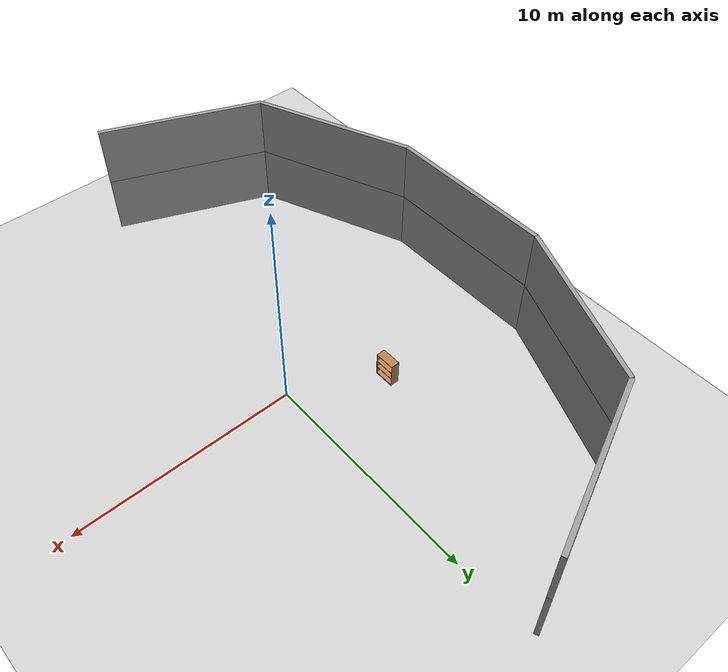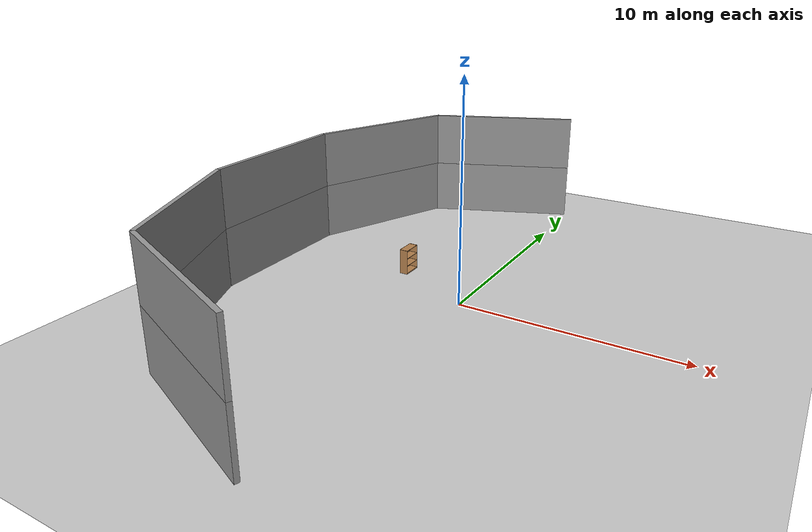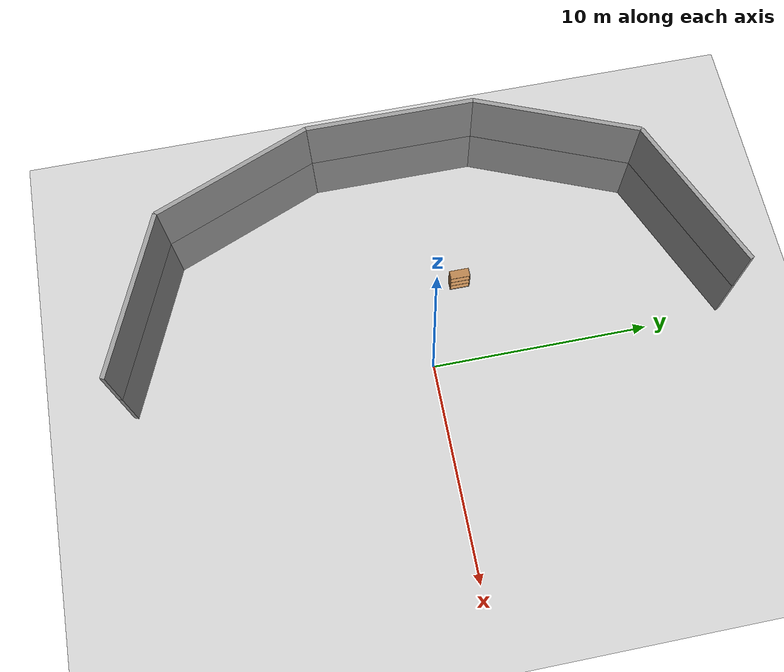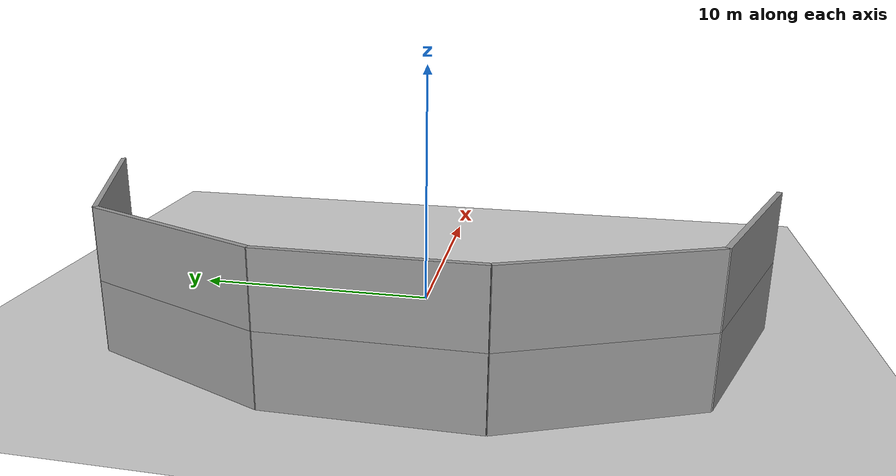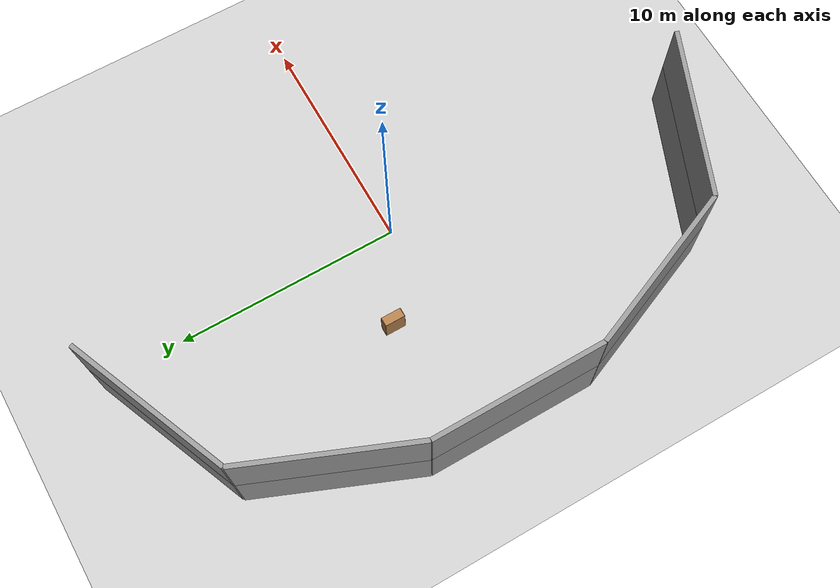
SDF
<sdf version="1.6">
 <world name="default">
  <model name="ground_plane">
   <pose>-5.34835 6.40165 0 0 -0 0.785397</pose>
   <static>1</static>
   <link name="link">
    <collision name="collision">
     <geometry><plane><normal>0 0 1</normal><size>100 100</size></plane></geometry>
     <surface>
      <contact><collide_bitmask>65535</collide_bitmask></contact>
      <friction><ode><mu>100</mu><mu2>50</mu2></ode></friction>
     </surface>
    </collision>
    <visual name="visual">
     <cast_shadows>0</cast_shadows>
     <geometry><plane><normal>0 0 1</normal><size>100 100</size></plane></geometry>
     <material>
      <script><uri>file://media/materials/scripts/gazebo.material</uri><name>Gazebo/Grey</name></script>
     </material>
    </visual>
   </link>
  </model>
  <light name="sun" type="directional">
   <pose>0 0 10 0 -0 0</pose>
   <diffuse>0.8 0.8 0.8 1</diffuse>
   <specular>0.2 0.2 0.2 1</specular>
   <attenuation>
    <range>1000</range>
    <constant>0.9</constant>
    <linear>0.01</linear>
    <quadratic>0.001</quadratic>
   </attenuation>
   <direction>-0.5 0.1 -0.9</direction>
  </light>
  <gravity>0 0 -9.8</gravity>
  <magnetic_field>6e-06 2.3e-05 -4.2e-05</magnetic_field>
  <atmosphere type="adiabatic"/>
  <physics name="default_physics" default="0" type="ode">
   <max_step_size>0.001</max_step_size>
   <real_time_factor>1</real_time_factor>
   <real_time_update_rate>1000</real_time_update_rate>
  </physics>
  <scene><ambient>0.4 0.4 0.4 1</ambient><background>0.7 0.7 0.7 1</background><shadows>1</shadows></scene>
  <audio><device>default</device></audio>
  <spherical_coordinates>
   <surface_model>EARTH_WGS84</surface_model>
   <latitude_deg>0</latitude_deg>
   <longitude_deg>0</longitude_deg>
   <elevation>0</elevation>
   <heading_deg>0</heading_deg>
  </spherical_coordinates>
  <light name="user_point_light_0" type="point">
   <pose>-1.0553 0.095489 1 0 -0 0</pose>
   <diffuse>0.5 0.5 0.5 1</diffuse>
   <specular>0.1 0.1 0.1 1</specular>
   <attenuation>
    <range>20</range>
    <constant>0.5</constant>
    <linear>0.01</linear>
    <quadratic>0.001</quadratic>
   </attenuation>
   <cast_shadows>0</cast_shadows>
   <direction>0 0 -1</direction>
  </light>
  <model name="grey_wall">
   <static>1</static>
   <link name="link">
    <pose>0 0 1.4 0 -0 0</pose>
    <collision name="collision"><geometry><box><size>7.5 0.2 2.8</size></box></geometry></collision>
    <visual name="visual">
     <cast_shadows>0</cast_shadows>
     <geometry><box><size>7.5 0.2 2.8</size></box></geometry>
     <material>
      <script>
       <uri>model://grey_wall/materials/scripts</uri>
       <uri>model://grey_wall/materials/textures</uri>
       <name>vrc/grey_wall</name>
      </script>
     </material>
    </visual>
   </link>
   <pose>-10 0 0 0 -0 1.5708</pose>
  </model>
  <light name="user_directional_light_0" type="directional">
   <pose>-0.686026 3.90636 1 0 -0 0</pose>
   <diffuse>0.5 0.5 0.5 1</diffuse>
   <specular>0.1 0.1 0.1 1</specular>
   <direction>0.1 0.1 -0.9</direction>
   <attenuation>
    <range>20</range>
    <constant>0.5</constant>
    <linear>0.01</linear>
    <quadratic>0.001</quadratic>
   </attenuation>
  </light>
  <model name="bookshelf">
   <static>1</static>
   <link name="link">
    <inertial><mass>1</mass></inertial>
    <collision name="back">
     <pose>0 0.005 0.6 0 -0 0</pose>
     <geometry><box><size>0.9 0.01 1.2</size></box></geometry>
    </collision>
    <visual name="visual1">
     <pose>0 0.005 0.6 0 -0 0</pose>
     <geometry><box><size>0.9 0.01 1.2</size></box></geometry>
     <material>
      <script><uri>file://media/materials/scripts/gazebo.material</uri><name>Gazebo/Wood</name></script>
     </material>
    </visual>
    <collision name="left_side">
     <pose>0.45 -0.195 0.6 0 -0 0</pose>
     <geometry><box><size>0.02 0.4 1.2</size></box></geometry>
    </collision>
    <visual name="visual2">
     <pose>0.45 -0.195 0.6 0 -0 0</pose>
     <geometry><box><size>0.02 0.4 1.2</size></box></geometry>
     <material>
      <script><uri>file://media/materials/scripts/gazebo.material</uri><name>Gazebo/Wood</name></script>
     </material>
    </visual>
    <collision name="right_side">
     <pose>-0.45 -0.195 0.6 0 -0 0</pose>
     <geometry><box><size>0.02 0.4 1.2</size></box></geometry>
    </collision>
    <visual name="visual3">
     <pose>-0.45 -0.195 0.6 0 -0 0</pose>
     <geometry><box><size>0.02 0.4 1.2</size></box></geometry>
     <material>
      <script><uri>file://media/materials/scripts/gazebo.material</uri><name>Gazebo/Wood</name></script>
     </material>
    </visual>
    <collision name="bottom">
     <pose>0 -0.195 0.03 0 -0 0</pose>
     <geometry><box><size>0.88 0.4 0.06</size></box></geometry>
    </collision>
    <visual name="visual4">
     <pose>0 -0.195 0.03 0 -0 0</pose>
     <geometry><box><size>0.88 0.4 0.06</size></box></geometry>
     <material>
      <script><uri>file://media/materials/scripts/gazebo.material</uri><name>Gazebo/Wood</name></script>
     </material>
    </visual>
    <collision name="top">
     <pose>0 -0.195 1.19 0 -0 0</pose>
     <geometry><box><size>0.88 0.4 0.02</size></box></geometry>
    </collision>
    <visual name="visual5">
     <pose>0 -0.195 1.19 0 -0 0</pose>
     <geometry><box><size>0.88 0.4 0.02</size></box></geometry>
     <material>
      <script><uri>file://media/materials/scripts/gazebo.material</uri><name>Gazebo/Wood</name></script>
     </material>
    </visual>
    <collision name="low_shelf">
     <pose>0 -0.195 0.43 0 -0 0</pose>
     <geometry><box><size>0.88 0.4 0.02</size></box></geometry>
    </collision>
    <visual name="visual6">
     <pose>0 -0.195 0.43 0 -0 0</pose>
     <geometry><box><size>0.88 0.4 0.02</size></box></geometry>
     <material>
      <script><uri>file://media/materials/scripts/gazebo.material</uri><name>Gazebo/Wood</name></script>
     </material>
    </visual>
    <collision name="high_shelf">
     <pose>0 -0.195 0.8 0 -0 0</pose>
     <geometry><box><size>0.88 0.4 0.02</size></box></geometry>
    </collision>
    <visual name="visual7">
     <pose>0 -0.195 0.8 0 -0 0</pose>
     <geometry><box><size>0.88 0.4 0.02</size></box></geometry>
     <material>
      <script><uri>file://media/materials/scripts/gazebo.material</uri><name>Gazebo/Wood</name></script>
     </material>
    </visual>
   </link>
   <pose>-4 2 0 0 -0 1.5708</pose>
  </model>
  <model name="grey_wall_clone">
   <static>1</static>
   <link name="link">
    <pose>0 0 1.4 0 -0 0</pose>
    <collision name="collision"><geometry><box><size>7.5 0.2 2.8</size></box></geometry></collision>
    <visual name="visual">
     <cast_shadows>0</cast_shadows>
     <geometry><box><size>7.5 0.2 2.8</size></box></geometry>
     <material>
      <script>
       <uri>model://grey_wall/materials/scripts</uri>
       <uri>model://grey_wall/materials/textures</uri>
       <name>vrc/grey_wall</name>
      </script>
     </material>
    </visual>
   </link>
   <pose>-10 0 2.8 0 -0 1.5708</pose>
  </model>
  <model name="grey_wall_clone_0">
   <static>1</static>
   <link name="link">
    <pose>0 0 1.4 0 -0 0</pose>
    <collision name="collision"><geometry><box><size>7.5 0.2 2.8</size></box></geometry></collision>
    <visual name="visual">
     <cast_shadows>0</cast_shadows>
     <geometry><box><size>7.5 0.2 2.8</size></box></geometry>
     <material>
      <script>
       <uri>model://grey_wall/materials/scripts</uri>
       <uri>model://grey_wall/materials/textures</uri>
       <name>vrc/grey_wall</name>
      </script>
     </material>
    </visual>
   </link>
   <pose>-8.56494 -7.21455 0 0 -0 1.96349</pose>
  </model>
  <model name="grey_wall_clone_0_clone">
   <static>1</static>
   <link name="link">
    <pose>0 0 1.4 0 -0 0</pose>
    <collision name="collision"><geometry><box><size>7.5 0.2 2.8</size></box></geometry></collision>
    <visual name="visual">
     <cast_shadows>0</cast_shadows>
     <geometry><box><size>7.5 0.2 2.8</size></box></geometry>
     <material>
      <script>
       <uri>model://grey_wall/materials/scripts</uri>
       <uri>model://grey_wall/materials/textures</uri>
       <name>vrc/grey_wall</name>
      </script>
     </material>
    </visual>
   </link>
   <pose>-8.56494 -7.21455 2.8 0 -0 1.96349</pose>
  </model>
  <model name="grey_wall_clone_1">
   <static>1</static>
   <link name="link">
    <pose>0 0 1.4 0 -0 0</pose>
    <collision name="collision"><geometry><box><size>7.5 0.2 2.8</size></box></geometry></collision>
    <visual name="visual">
     <cast_shadows>0</cast_shadows>
     <geometry><box><size>7.5 0.2 2.8</size></box></geometry>
     <material>
      <script>
       <uri>model://grey_wall/materials/scripts</uri>
       <uri>model://grey_wall/materials/textures</uri>
       <name>vrc/grey_wall</name>
      </script>
     </material>
    </visual>
   </link>
   <pose>-8.56494 7.21455 0 0 0 -1.96349</pose>
  </model>
  <model name="grey_wall_clone_1_clone">
   <static>1</static>
   <link name="link">
    <pose>0 0 1.4 0 -0 0</pose>
    <collision name="collision"><geometry><box><size>7.5 0.2 2.8</size></box></geometry></collision>
    <visual name="visual">
     <cast_shadows>0</cast_shadows>
     <geometry><box><size>7.5 0.2 2.8</size></box></geometry>
     <material>
      <script>
       <uri>model://grey_wall/materials/scripts</uri>
       <uri>model://grey_wall/materials/textures</uri>
       <name>vrc/grey_wall</name>
      </script>
     </material>
    </visual>
   </link>
   <pose>-8.56494 7.21455 2.8 0 0 -1.96349</pose>
  </model>
  <model name="grey_wall_clone_0_clone_0">
   <static>1</static>
   <link name="link">
    <pose>0 0 1.4 0 -0 0</pose>
    <collision name="collision"><geometry><box><size>7.5 0.2 2.8</size></box></geometry></collision>
    <visual name="visual">
     <cast_shadows>0</cast_shadows>
     <geometry><box><size>7.5 0.2 2.8</size></box></geometry>
     <material>
      <script>
       <uri>model://grey_wall/materials/scripts</uri>
       <uri>model://grey_wall/materials/textures</uri>
       <name>vrc/grey_wall</name>
      </script>
     </material>
    </visual>
   </link>
   <pose>-3.66533 -12.1142 0 0 -0 2.74889</pose>
  </model>
  <model name="grey_wall_clone_0_clone_0_clone">
   <static>1</static>
   <link name="link">
    <pose>0 0 1.4 0 -0 0</pose>
    <collision name="collision"><geometry><box><size>7.5 0.2 2.8</size></box></geometry></collision>
    <visual name="visual">
     <cast_shadows>0</cast_shadows>
     <geometry><box><size>7.5 0.2 2.8</size></box></geometry>
     <material>
      <script>
       <uri>model://grey_wall/materials/scripts</uri>
       <uri>model://grey_wall/materials/textures</uri>
       <name>vrc/grey_wall</name>
      </script>
     </material>
    </visual>
   </link>
   <pose>-3.66533 -12.1142 2.8 0 -0 2.74889</pose>
  </model>
  <model name="grey_wall_clone_0_clone_0_clone_0">
   <static>1</static>
   <link name="link">
    <pose>0 0 1.4 0 -0 0</pose>
    <collision name="collision"><geometry><box><size>7.5 0.2 2.8</size></box></geometry></collision>
    <visual name="visual">
     <cast_shadows>0</cast_shadows>
     <geometry><box><size>7.5 0.2 2.8</size></box></geometry>
     <material>
      <script>
       <uri>model://grey_wall/materials/scripts</uri>
       <uri>model://grey_wall/materials/textures</uri>
       <name>vrc/grey_wall</name>
      </script>
     </material>
    </visual>
   </link>
   <pose>-3.66533 12.1142 0 0 0 -2.74889</pose>
  </model>
  <model name="grey_wall_clone_0_clone_0_clone_0_clone">
   <static>1</static>
   <link name="link">
    <pose>0 0 1.4 0 -0 0</pose>
    <collision name="collision"><geometry><box><size>7.5 0.2 2.8</size></box></geometry></collision>
    <visual name="visual">
     <cast_shadows>0</cast_shadows>
     <geometry><box><size>7.5 0.2 2.8</size></box></geometry>
     <material>
      <script>
       <uri>model://grey_wall/materials/scripts</uri>
       <uri>model://grey_wall/materials/textures</uri>
       <name>vrc/grey_wall</name>
      </script>
     </material>
    </visual>
   </link>
   <pose>-3.66533 12.1142 2.8 0 0 -2.74889</pose>
  </model>
 </world>
</sdf>
